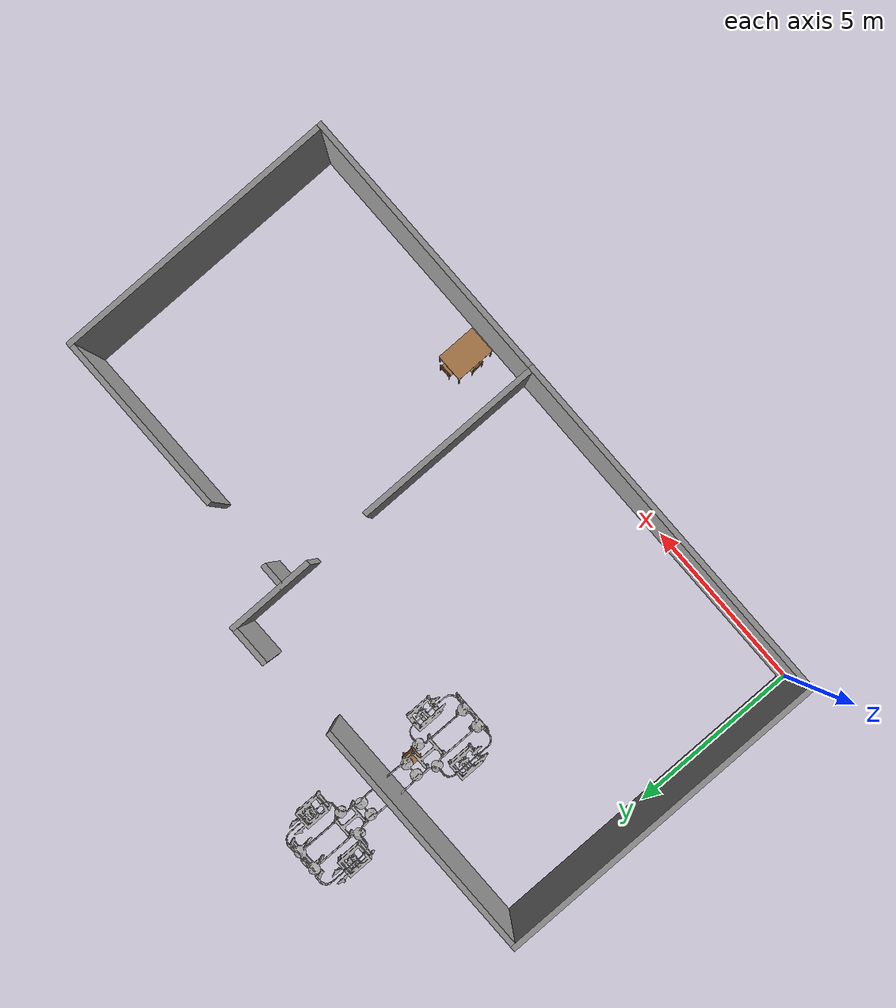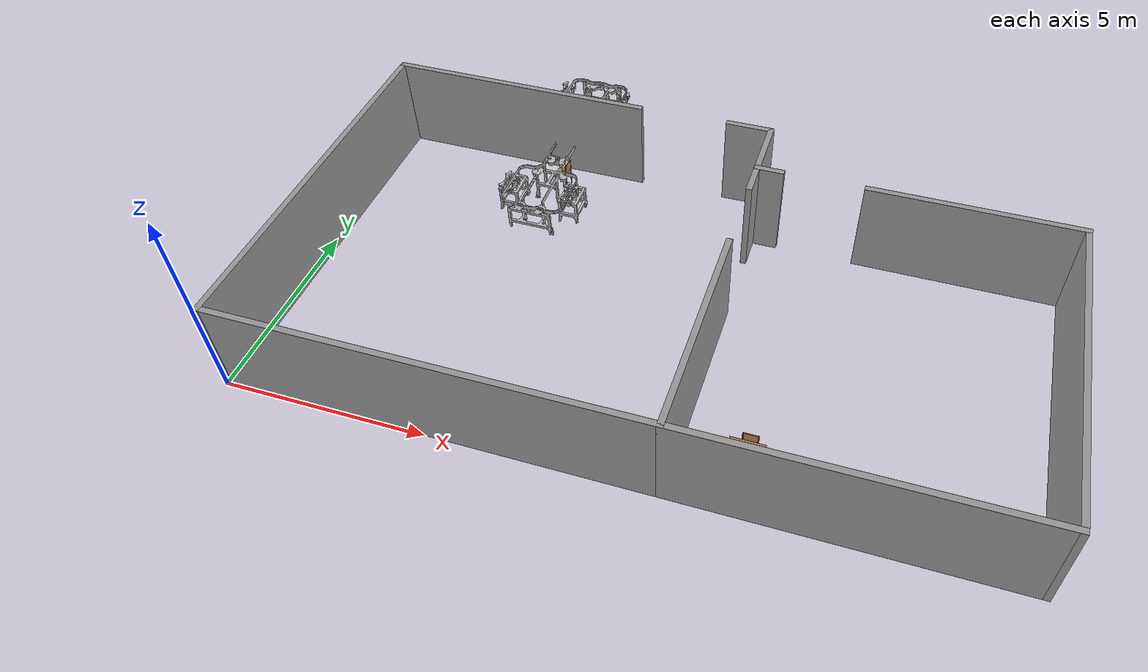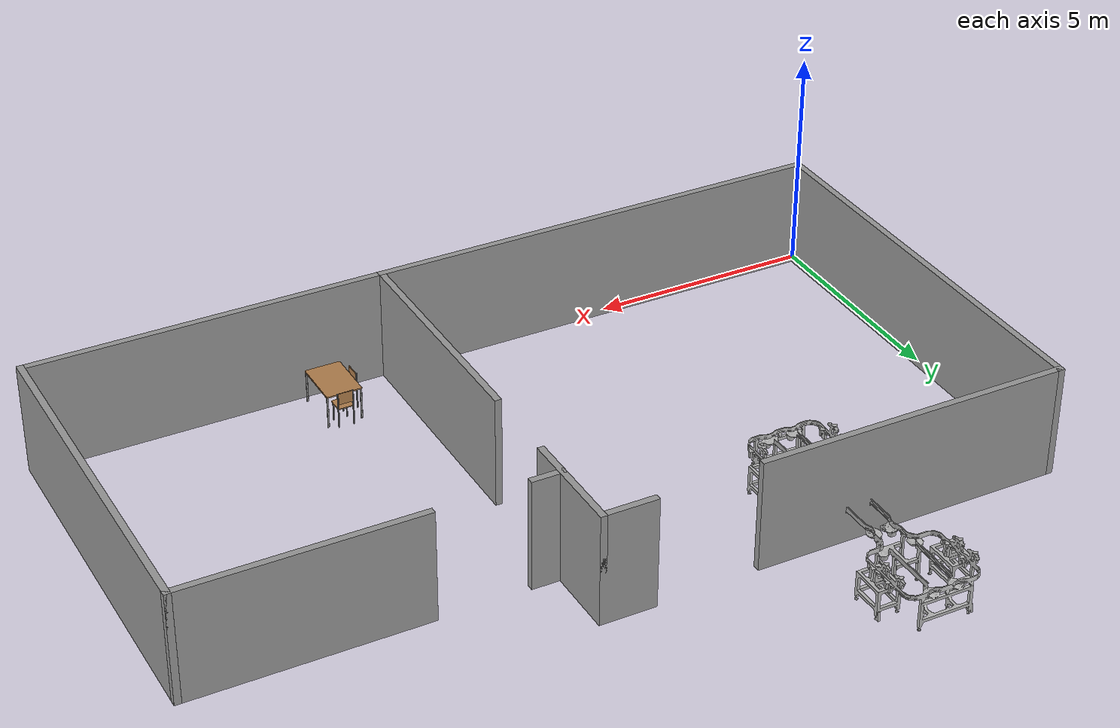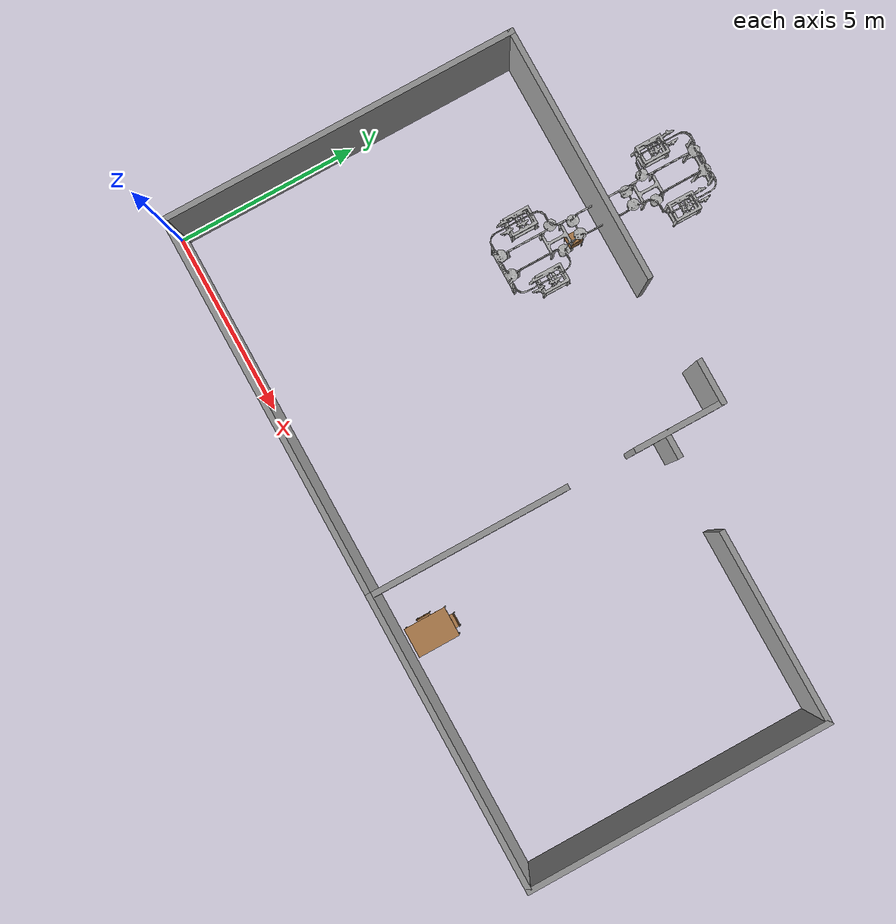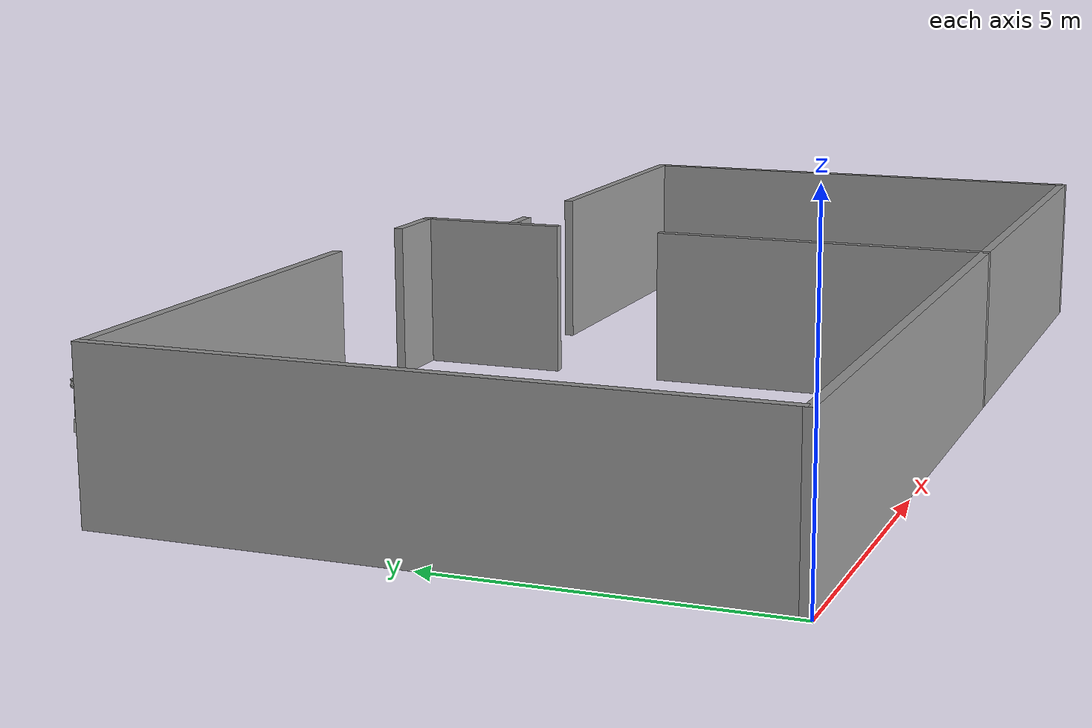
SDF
<sdf version="1.7">
 <world name="default">
  <model name="my_mesh">
   <pose>7.60509 9.58584 0 0 0 -1.5708</pose>
   <static>1</static>
   <link name="body">
    <visual name="visual"><geometry><mesh><uri>model://Cellule_lite.dae</uri></mesh></geometry></visual>
   </link>
  </model>
  <model name="table_mod_clone_clone_1_clone_clone">
   <link name="link">
    <inertial>
     <mass>1</mass>
     <inertia><ixx>1</ixx><ixy>0</ixy><ixz>0</ixz><iyy>1</iyy><iyz>0</iyz><izz>1</izz></inertia>
    </inertial>
    <visual name="visual1">
     <pose>0 0 0.87 0 -0 0</pose>
     <geometry><box><size>1.15 0.8 0.03</size></box></geometry>
     <material>
      <script><uri>file://media/materials/scripts/gazebo.material</uri><name>Gazebo/Wood</name></script>
      <shader type="pixel"><normal_map>__default__</normal_map></shader>
      <ambient>1 1 1 1</ambient>
      <diffuse>1 1 1 1</diffuse>
      <specular>0.2 0.2 0.2 1</specular>
      <emissive>0 0 0 1</emissive>
     </material>
    </visual>
    <visual name="back_right_leg">
     <pose>-0.55 -0.38 0.5 0 -0 0</pose>
     <geometry><cylinder><radius>0.02</radius><length>0.75</length></cylinder></geometry>
     <material>
      <script><uri>file://media/materials/scripts/gazebo.material</uri><name>Gazebo/Grey</name></script>
      <shader type="pixel"><normal_map>__default__</normal_map></shader>
      <ambient>0.3 0.3 0.3 1</ambient>
      <diffuse>0.7 0.7 0.7 1</diffuse>
      <specular>0.01 0.01 0.01 1</specular>
      <emissive>0 0 0 1</emissive>
     </material>
    </visual>
    <visual name="front_right_leg">
     <pose>0.55 -0.38 0.5 0 -0 0</pose>
     <geometry><cylinder><radius>0.02</radius><length>0.75</length></cylinder></geometry>
     <material>
      <script><uri>file://media/materials/scripts/gazebo.material</uri><name>Gazebo/Grey</name></script>
      <shader type="pixel"><normal_map>__default__</normal_map></shader>
      <ambient>0.3 0.3 0.3 1</ambient>
      <diffuse>0.7 0.7 0.7 1</diffuse>
      <specular>0.01 0.01 0.01 1</specular>
      <emissive>0 0 0 1</emissive>
     </material>
    </visual>
    <visual name="back_left_leg">
     <pose>-0.55 0.38 0.5 0 -0 0</pose>
     <geometry><cylinder><radius>0.02</radius><length>0.75</length></cylinder></geometry>
     <material>
      <script><uri>file://media/materials/scripts/gazebo.material</uri><name>Gazebo/Grey</name></script>
      <shader type="pixel"><normal_map>__default__</normal_map></shader>
      <ambient>0.3 0.3 0.3 1</ambient>
      <diffuse>0.7 0.7 0.7 1</diffuse>
      <specular>0.01 0.01 0.01 1</specular>
      <emissive>0 0 0 1</emissive>
     </material>
    </visual>
    <visual name="front_left_leg">
     <pose>0.55 0.38 0.5 0 -0 0</pose>
     <geometry><cylinder><radius>0.02</radius><length>0.75</length></cylinder></geometry>
     <material>
      <script><uri>file://media/materials/scripts/gazebo.material</uri><name>Gazebo/Grey</name></script>
      <shader type="pixel"><normal_map>__default__</normal_map></shader>
      <ambient>0.3 0.3 0.3 1</ambient>
      <diffuse>0.7 0.7 0.7 1</diffuse>
      <specular>0.01 0.01 0.01 1</specular>
      <emissive>0 0 0 1</emissive>
     </material>
    </visual>
    <collision name="surface">
     <pose>0 0 0.87 0 -0 0</pose>
     <geometry><box><size>1.15 0.8 0.03</size></box></geometry>
     <surface>
      <friction>
       <ode><mu>0.6</mu><mu2>0.6</mu2><fdir1>0 0 0</fdir1><slip1>0</slip1><slip2>0</slip2></ode>
       <torsional>
        <coefficient>1</coefficient>
        <patch_radius>0</patch_radius>
        <surface_radius>0</surface_radius>
        <use_patch_radius>1</use_patch_radius>
        <ode><slip>0</slip></ode>
       </torsional>
      </friction>
      <bounce><restitution_coefficient>0</restitution_coefficient><threshold>1e+06</threshold></bounce>
      <contact>
       <collide_without_contact>0</collide_without_contact>
       <collide_without_contact_bitmask>1</collide_without_contact_bitmask>
       <collide_bitmask>1</collide_bitmask>
       <ode>
        <soft_cfm>0</soft_cfm>
        <soft_erp>0.2</soft_erp>
        <kp>1e+13</kp>
        <kd>1</kd>
        <max_vel>0.01</max_vel>
        <min_depth>0</min_depth>
       </ode>
       <bullet>
        <split_impulse>1</split_impulse>
        <split_impulse_penetration_threshold>-0.01</split_impulse_penetration_threshold>
        <soft_cfm>0</soft_cfm>
        <soft_erp>0.2</soft_erp>
        <kp>1e+13</kp>
        <kd>1</kd>
       </bullet>
      </contact>
     </surface>
    </collision>
    <collision name="back_right_leg">
     <pose>-0.55 -0.38 0.5 0 -0 0</pose>
     <geometry><cylinder><radius>0.02</radius><length>0.75</length></cylinder></geometry>
     <surface>
      <friction>
       <ode><mu>1</mu><mu2>1</mu2><fdir1>0 0 0</fdir1><slip1>0</slip1><slip2>0</slip2></ode>
       <torsional>
        <coefficient>1</coefficient>
        <patch_radius>0</patch_radius>
        <surface_radius>0</surface_radius>
        <use_patch_radius>1</use_patch_radius>
        <ode><slip>0</slip></ode>
       </torsional>
      </friction>
      <bounce><restitution_coefficient>0</restitution_coefficient><threshold>1e+06</threshold></bounce>
      <contact>
       <collide_without_contact>0</collide_without_contact>
       <collide_without_contact_bitmask>1</collide_without_contact_bitmask>
       <collide_bitmask>1</collide_bitmask>
       <ode>
        <soft_cfm>0</soft_cfm>
        <soft_erp>0.2</soft_erp>
        <kp>1e+13</kp>
        <kd>1</kd>
        <max_vel>0.01</max_vel>
        <min_depth>0</min_depth>
       </ode>
       <bullet>
        <split_impulse>1</split_impulse>
        <split_impulse_penetration_threshold>-0.01</split_impulse_penetration_threshold>
        <soft_cfm>0</soft_cfm>
        <soft_erp>0.2</soft_erp>
        <kp>1e+13</kp>
        <kd>1</kd>
       </bullet>
      </contact>
     </surface>
    </collision>
    <collision name="back_left_leg">
     <pose>-0.55 0.38 0.5 0 -0 0</pose>
     <geometry><cylinder><radius>0.02</radius><length>0.75</length></cylinder></geometry>
     <surface>
      <friction>
       <ode><mu>1</mu><mu2>1</mu2><fdir1>0 0 0</fdir1><slip1>0</slip1><slip2>0</slip2></ode>
       <torsional>
        <coefficient>1</coefficient>
        <patch_radius>0</patch_radius>
        <surface_radius>0</surface_radius>
        <use_patch_radius>1</use_patch_radius>
        <ode><slip>0</slip></ode>
       </torsional>
      </friction>
      <bounce><restitution_coefficient>0</restitution_coefficient><threshold>1e+06</threshold></bounce>
      <contact>
       <collide_without_contact>0</collide_without_contact>
       <collide_without_contact_bitmask>1</collide_without_contact_bitmask>
       <collide_bitmask>1</collide_bitmask>
       <ode>
        <soft_cfm>0</soft_cfm>
        <soft_erp>0.2</soft_erp>
        <kp>1e+13</kp>
        <kd>1</kd>
        <max_vel>0.01</max_vel>
        <min_depth>0</min_depth>
       </ode>
       <bullet>
        <split_impulse>1</split_impulse>
        <split_impulse_penetration_threshold>-0.01</split_impulse_penetration_threshold>
        <soft_cfm>0</soft_cfm>
        <soft_erp>0.2</soft_erp>
        <kp>1e+13</kp>
        <kd>1</kd>
       </bullet>
      </contact>
     </surface>
    </collision>
    <collision name="front_left_leg">
     <pose>0.55 0.38 0.5 0 -0 0</pose>
     <geometry><cylinder><radius>0.02</radius><length>0.75</length></cylinder></geometry>
     <surface>
      <friction>
       <ode><mu>1</mu><mu2>1</mu2><fdir1>0 0 0</fdir1><slip1>0</slip1><slip2>0</slip2></ode>
       <torsional>
        <coefficient>1</coefficient>
        <patch_radius>0</patch_radius>
        <surface_radius>0</surface_radius>
        <use_patch_radius>1</use_patch_radius>
        <ode><slip>0</slip></ode>
       </torsional>
      </friction>
      <bounce><restitution_coefficient>0</restitution_coefficient><threshold>1e+06</threshold></bounce>
      <contact>
       <collide_without_contact>0</collide_without_contact>
       <collide_without_contact_bitmask>1</collide_without_contact_bitmask>
       <collide_bitmask>1</collide_bitmask>
       <ode>
        <soft_cfm>0</soft_cfm>
        <soft_erp>0.2</soft_erp>
        <kp>1e+13</kp>
        <kd>1</kd>
        <max_vel>0.01</max_vel>
        <min_depth>0</min_depth>
       </ode>
       <bullet>
        <split_impulse>1</split_impulse>
        <split_impulse_penetration_threshold>-0.01</split_impulse_penetration_threshold>
        <soft_cfm>0</soft_cfm>
        <soft_erp>0.2</soft_erp>
        <kp>1e+13</kp>
        <kd>1</kd>
       </bullet>
      </contact>
     </surface>
    </collision>
    <collision name="front_right_leg">
     <pose>0.55 -0.38 0.5 0 -0 0</pose>
     <geometry><cylinder><radius>0.02</radius><length>0.75</length></cylinder></geometry>
     <surface>
      <friction>
       <ode><mu>1</mu><mu2>1</mu2><fdir1>0 0 0</fdir1><slip1>0</slip1><slip2>0</slip2></ode>
       <torsional>
        <coefficient>1</coefficient>
        <patch_radius>0</patch_radius>
        <surface_radius>0</surface_radius>
        <use_patch_radius>1</use_patch_radius>
        <ode><slip>0</slip></ode>
       </torsional>
      </friction>
      <bounce><restitution_coefficient>0</restitution_coefficient><threshold>1e+06</threshold></bounce>
      <contact>
       <collide_without_contact>0</collide_without_contact>
       <collide_without_contact_bitmask>1</collide_without_contact_bitmask>
       <collide_bitmask>1</collide_bitmask>
       <ode>
        <soft_cfm>0</soft_cfm>
        <soft_erp>0.2</soft_erp>
        <kp>1e+13</kp>
        <kd>1</kd>
        <max_vel>0.01</max_vel>
        <min_depth>0</min_depth>
       </ode>
       <bullet>
        <split_impulse>1</split_impulse>
        <split_impulse_penetration_threshold>-0.01</split_impulse_penetration_threshold>
        <soft_cfm>0</soft_cfm>
        <soft_erp>0.2</soft_erp>
        <kp>1e+13</kp>
        <kd>1</kd>
       </bullet>
      </contact>
     </surface>
    </collision>
   </link>
   <static>1</static>
   <pose>11.9408 0.86073 -0.134214 0 0 -1.5708</pose>
  </model>
  <model name="chair_mod_0_clone_2_clone_1_clone_0">
   <link name="link">
    <inertial>
     <mass>1</mass>
     <inertia><ixx>1</ixx><ixy>0</ixy><ixz>0</ixz><iyy>1</iyy><iyz>0</iyz><izz>1</izz></inertia>
    </inertial>
    <visual name="back_right_leg">
     <pose>-0.17 -0.17 0.42 0 -0 0</pose>
     <geometry><cylinder><radius>0.015</radius><length>0.84</length></cylinder></geometry>
     <material>
      <script><uri>file://media/materials/scripts/gazebo.material</uri><name>Gazebo/Grey</name></script>
      <shader type="pixel"><normal_map>__default__</normal_map></shader>
      <ambient>0.3 0.3 0.3 1</ambient>
      <diffuse>0.7 0.7 0.7 1</diffuse>
      <specular>0.01 0.01 0.01 1</specular>
      <emissive>0 0 0 1</emissive>
     </material>
    </visual>
    <visual name="back_left_leg">
     <pose>-0.15 0.15 0.23 0 -0 0</pose>
     <geometry><cylinder><radius>0.015</radius><length>0.46</length></cylinder></geometry>
     <material>
      <script><uri>file://media/materials/scripts/gazebo.material</uri><name>Gazebo/Grey</name></script>
      <shader type="pixel"><normal_map>__default__</normal_map></shader>
      <ambient>0.3 0.3 0.3 1</ambient>
      <diffuse>0.7 0.7 0.7 1</diffuse>
      <specular>0.01 0.01 0.01 1</specular>
      <emissive>0 0 0 1</emissive>
     </material>
    </visual>
    <visual name="visual1">
     <pose>0 0 0.46 0 -0 0</pose>
     <geometry><box><size>0.36 0.36 0.02</size></box></geometry>
     <material>
      <script><uri>file://media/materials/scripts/gazebo.material</uri><name>Gazebo/Wood</name></script>
      <shader type="pixel"><normal_map>__default__</normal_map></shader>
      <ambient>1 1 1 1</ambient>
      <diffuse>1 1 1 1</diffuse>
      <specular>0.2 0.2 0.2 1</specular>
      <emissive>0 0 0 1</emissive>
     </material>
    </visual>
    <visual name="ModelPreview_1::link::visual_5">
     <pose>0 -0.17 0.705 1.56 -0 0</pose>
     <geometry><box><size>0.36 0.26 0.02</size></box></geometry>
     <material>
      <script><uri>file://media/materials/scripts/gazebo.material</uri><name>Gazebo/Wood</name></script>
      <shader type="pixel"><normal_map>__default__</normal_map></shader>
      <ambient>1 1 1 1</ambient>
      <diffuse>1 1 1 1</diffuse>
      <specular>0.2 0.2 0.2 1</specular>
      <emissive>0 0 0 1</emissive>
     </material>
    </visual>
    <visual name="front_left_leg">
     <pose>0.15 0.15 0.23 0 -0 0</pose>
     <geometry><cylinder><radius>0.015</radius><length>0.46</length></cylinder></geometry>
     <material>
      <script><uri>file://media/materials/scripts/gazebo.material</uri><name>Gazebo/Grey</name></script>
      <shader type="pixel"><normal_map>__default__</normal_map></shader>
      <ambient>0.3 0.3 0.3 1</ambient>
      <diffuse>0.7 0.7 0.7 1</diffuse>
      <specular>0.01 0.01 0.01 1</specular>
      <emissive>0 0 0 1</emissive>
     </material>
    </visual>
    <visual name="front_right_leg">
     <pose>0.17 -0.17 0.42 0 -0 0</pose>
     <geometry><cylinder><radius>0.015</radius><length>0.84</length></cylinder></geometry>
     <material>
      <script><uri>file://media/materials/scripts/gazebo.material</uri><name>Gazebo/Grey</name></script>
      <shader type="pixel"><normal_map>__default__</normal_map></shader>
      <ambient>0.3 0.3 0.3 1</ambient>
      <diffuse>0.7 0.7 0.7 1</diffuse>
      <specular>0.01 0.01 0.01 1</specular>
      <emissive>0 0 0 1</emissive>
     </material>
    </visual>
    <collision name="front_right_leg">
     <pose>0.17 -0.17 0.42 0 -0 0</pose>
     <geometry><cylinder><radius>0.015</radius><length>0.84</length></cylinder></geometry>
     <surface>
      <friction>
       <ode><mu>1</mu><mu2>1</mu2><fdir1>0 0 0</fdir1><slip1>0</slip1><slip2>0</slip2></ode>
       <torsional>
        <coefficient>1</coefficient>
        <patch_radius>0</patch_radius>
        <surface_radius>0</surface_radius>
        <use_patch_radius>1</use_patch_radius>
        <ode><slip>0</slip></ode>
       </torsional>
      </friction>
      <bounce><restitution_coefficient>0</restitution_coefficient><threshold>1e+06</threshold></bounce>
      <contact>
       <collide_without_contact>0</collide_without_contact>
       <collide_without_contact_bitmask>1</collide_without_contact_bitmask>
       <collide_bitmask>1</collide_bitmask>
       <ode>
        <soft_cfm>0</soft_cfm>
        <soft_erp>0.2</soft_erp>
        <kp>1e+13</kp>
        <kd>1</kd>
        <max_vel>0.01</max_vel>
        <min_depth>0</min_depth>
       </ode>
       <bullet>
        <split_impulse>1</split_impulse>
        <split_impulse_penetration_threshold>-0.01</split_impulse_penetration_threshold>
        <soft_cfm>0</soft_cfm>
        <soft_erp>0.2</soft_erp>
        <kp>1e+13</kp>
        <kd>1</kd>
       </bullet>
      </contact>
     </surface>
    </collision>
    <collision name="back_right_leg">
     <pose>-0.17 -0.17 0.42 0 -0 0</pose>
     <geometry><cylinder><radius>0.015</radius><length>0.84</length></cylinder></geometry>
     <surface>
      <friction>
       <ode><mu>1</mu><mu2>1</mu2><fdir1>0 0 0</fdir1><slip1>0</slip1><slip2>0</slip2></ode>
       <torsional>
        <coefficient>1</coefficient>
        <patch_radius>0</patch_radius>
        <surface_radius>0</surface_radius>
        <use_patch_radius>1</use_patch_radius>
        <ode><slip>0</slip></ode>
       </torsional>
      </friction>
      <bounce><restitution_coefficient>0</restitution_coefficient><threshold>1e+06</threshold></bounce>
      <contact>
       <collide_without_contact>0</collide_without_contact>
       <collide_without_contact_bitmask>1</collide_without_contact_bitmask>
       <collide_bitmask>1</collide_bitmask>
       <ode>
        <soft_cfm>0</soft_cfm>
        <soft_erp>0.2</soft_erp>
        <kp>1e+13</kp>
        <kd>1</kd>
        <max_vel>0.01</max_vel>
        <min_depth>0</min_depth>
       </ode>
       <bullet>
        <split_impulse>1</split_impulse>
        <split_impulse_penetration_threshold>-0.01</split_impulse_penetration_threshold>
        <soft_cfm>0</soft_cfm>
        <soft_erp>0.2</soft_erp>
        <kp>1e+13</kp>
        <kd>1</kd>
       </bullet>
      </contact>
     </surface>
    </collision>
    <collision name="back_left_leg">
     <pose>-0.15 0.15 0.23 0 -0 0</pose>
     <geometry><cylinder><radius>0.015</radius><length>0.46</length></cylinder></geometry>
     <surface>
      <friction>
       <ode><mu>1</mu><mu2>1</mu2><fdir1>0 0 0</fdir1><slip1>0</slip1><slip2>0</slip2></ode>
       <torsional>
        <coefficient>1</coefficient>
        <patch_radius>0</patch_radius>
        <surface_radius>0</surface_radius>
        <use_patch_radius>1</use_patch_radius>
        <ode><slip>0</slip></ode>
       </torsional>
      </friction>
      <bounce><restitution_coefficient>0</restitution_coefficient><threshold>1e+06</threshold></bounce>
      <contact>
       <collide_without_contact>0</collide_without_contact>
       <collide_without_contact_bitmask>1</collide_without_contact_bitmask>
       <collide_bitmask>1</collide_bitmask>
       <ode>
        <soft_cfm>0</soft_cfm>
        <soft_erp>0.2</soft_erp>
        <kp>1e+13</kp>
        <kd>1</kd>
        <max_vel>0.01</max_vel>
        <min_depth>0</min_depth>
       </ode>
       <bullet>
        <split_impulse>1</split_impulse>
        <split_impulse_penetration_threshold>-0.01</split_impulse_penetration_threshold>
        <soft_cfm>0</soft_cfm>
        <soft_erp>0.2</soft_erp>
        <kp>1e+13</kp>
        <kd>1</kd>
       </bullet>
      </contact>
     </surface>
    </collision>
    <collision name="collision_6">
     <pose>0 -0.17 0.705 1.56 -0 0</pose>
     <geometry><box><size>0.36 0.26 0.03</size></box></geometry>
     <surface>
      <friction>
       <ode><mu>1</mu><mu2>1</mu2><fdir1>0 0 0</fdir1><slip1>0</slip1><slip2>0</slip2></ode>
       <torsional>
        <coefficient>1</coefficient>
        <patch_radius>0</patch_radius>
        <surface_radius>0</surface_radius>
        <use_patch_radius>1</use_patch_radius>
        <ode><slip>0</slip></ode>
       </torsional>
      </friction>
      <bounce><restitution_coefficient>0</restitution_coefficient><threshold>1e+06</threshold></bounce>
      <contact>
       <collide_without_contact>0</collide_without_contact>
       <collide_without_contact_bitmask>1</collide_without_contact_bitmask>
       <collide_bitmask>1</collide_bitmask>
       <ode>
        <soft_cfm>0</soft_cfm>
        <soft_erp>0.2</soft_erp>
        <kp>1e+13</kp>
        <kd>1</kd>
        <max_vel>0.01</max_vel>
        <min_depth>0</min_depth>
       </ode>
       <bullet>
        <split_impulse>1</split_impulse>
        <split_impulse_penetration_threshold>-0.01</split_impulse_penetration_threshold>
        <soft_cfm>0</soft_cfm>
        <soft_erp>0.2</soft_erp>
        <kp>1e+13</kp>
        <kd>1</kd>
       </bullet>
      </contact>
     </surface>
    </collision>
    <collision name="surface">
     <pose>0 0 0.46 0 -0 0</pose>
     <geometry><box><size>0.36 0.36 0.03</size></box></geometry>
     <surface>
      <friction>
       <ode><mu>0.6</mu><mu2>0.6</mu2><fdir1>0 0 0</fdir1><slip1>0</slip1><slip2>0</slip2></ode>
       <torsional>
        <coefficient>1</coefficient>
        <patch_radius>0</patch_radius>
        <surface_radius>0</surface_radius>
        <use_patch_radius>1</use_patch_radius>
        <ode><slip>0</slip></ode>
       </torsional>
      </friction>
      <bounce><restitution_coefficient>0</restitution_coefficient><threshold>1e+06</threshold></bounce>
      <contact>
       <collide_without_contact>0</collide_without_contact>
       <collide_without_contact_bitmask>1</collide_without_contact_bitmask>
       <collide_bitmask>1</collide_bitmask>
       <ode>
        <soft_cfm>0</soft_cfm>
        <soft_erp>0.2</soft_erp>
        <kp>1e+13</kp>
        <kd>1</kd>
        <max_vel>0.01</max_vel>
        <min_depth>0</min_depth>
       </ode>
       <bullet>
        <split_impulse>1</split_impulse>
        <split_impulse_penetration_threshold>-0.01</split_impulse_penetration_threshold>
        <soft_cfm>0</soft_cfm>
        <soft_erp>0.2</soft_erp>
        <kp>1e+13</kp>
        <kd>1</kd>
       </bullet>
      </contact>
     </surface>
    </collision>
    <collision name="front_left_leg">
     <pose>0.15 0.15 0.23 0 -0 0</pose>
     <geometry><cylinder><radius>0.015</radius><length>0.46</length></cylinder></geometry>
     <surface>
      <friction>
       <ode><mu>1</mu><mu2>1</mu2><fdir1>0 0 0</fdir1><slip1>0</slip1><slip2>0</slip2></ode>
       <torsional>
        <coefficient>1</coefficient>
        <patch_radius>0</patch_radius>
        <surface_radius>0</surface_radius>
        <use_patch_radius>1</use_patch_radius>
        <ode><slip>0</slip></ode>
       </torsional>
      </friction>
      <bounce><restitution_coefficient>0</restitution_coefficient><threshold>1e+06</threshold></bounce>
      <contact>
       <collide_without_contact>0</collide_without_contact>
       <collide_without_contact_bitmask>1</collide_without_contact_bitmask>
       <collide_bitmask>1</collide_bitmask>
       <ode>
        <soft_cfm>0</soft_cfm>
        <soft_erp>0.2</soft_erp>
        <kp>1e+13</kp>
        <kd>1</kd>
        <max_vel>0.01</max_vel>
        <min_depth>0</min_depth>
       </ode>
       <bullet>
        <split_impulse>1</split_impulse>
        <split_impulse_penetration_threshold>-0.01</split_impulse_penetration_threshold>
        <soft_cfm>0</soft_cfm>
        <soft_erp>0.2</soft_erp>
        <kp>1e+13</kp>
        <kd>1</kd>
       </bullet>
      </contact>
     </surface>
    </collision>
   </link>
   <static>1</static>
   <pose>11.9699 1.37634 0 0 0 -3.14159</pose>
  </model>
  <model name="chair_mod_0_clone_2_clone_1_clone_3_clone">
   <link name="link">
    <inertial>
     <mass>1</mass>
     <inertia><ixx>1</ixx><ixy>0</ixy><ixz>0</ixz><iyy>1</iyy><iyz>0</iyz><izz>1</izz></inertia>
    </inertial>
    <visual name="back_right_leg">
     <pose>-0.17 -0.17 0.42 0 -0 0</pose>
     <geometry><cylinder><radius>0.015</radius><length>0.84</length></cylinder></geometry>
     <material>
      <script><uri>file://media/materials/scripts/gazebo.material</uri><name>Gazebo/Grey</name></script>
      <shader type="pixel"><normal_map>__default__</normal_map></shader>
      <ambient>0.3 0.3 0.3 1</ambient>
      <diffuse>0.7 0.7 0.7 1</diffuse>
      <specular>0.01 0.01 0.01 1</specular>
      <emissive>0 0 0 1</emissive>
     </material>
    </visual>
    <visual name="back_left_leg">
     <pose>-0.15 0.15 0.23 0 -0 0</pose>
     <geometry><cylinder><radius>0.015</radius><length>0.46</length></cylinder></geometry>
     <material>
      <script><uri>file://media/materials/scripts/gazebo.material</uri><name>Gazebo/Grey</name></script>
      <shader type="pixel"><normal_map>__default__</normal_map></shader>
      <ambient>0.3 0.3 0.3 1</ambient>
      <diffuse>0.7 0.7 0.7 1</diffuse>
      <specular>0.01 0.01 0.01 1</specular>
      <emissive>0 0 0 1</emissive>
     </material>
    </visual>
    <visual name="visual1">
     <pose>0 0 0.46 0 -0 0</pose>
     <geometry><box><size>0.36 0.36 0.02</size></box></geometry>
     <material>
      <script><uri>file://media/materials/scripts/gazebo.material</uri><name>Gazebo/Wood</name></script>
      <shader type="pixel"><normal_map>__default__</normal_map></shader>
      <ambient>1 1 1 1</ambient>
      <diffuse>1 1 1 1</diffuse>
      <specular>0.2 0.2 0.2 1</specular>
      <emissive>0 0 0 1</emissive>
     </material>
    </visual>
    <visual name="ModelPreview_1::link::visual_5">
     <pose>0 -0.17 0.705 1.56 -0 0</pose>
     <geometry><box><size>0.36 0.26 0.02</size></box></geometry>
     <material>
      <script><uri>file://media/materials/scripts/gazebo.material</uri><name>Gazebo/Wood</name></script>
      <shader type="pixel"><normal_map>__default__</normal_map></shader>
      <ambient>1 1 1 1</ambient>
      <diffuse>1 1 1 1</diffuse>
      <specular>0.2 0.2 0.2 1</specular>
      <emissive>0 0 0 1</emissive>
     </material>
    </visual>
    <visual name="front_left_leg">
     <pose>0.15 0.15 0.23 0 -0 0</pose>
     <geometry><cylinder><radius>0.015</radius><length>0.46</length></cylinder></geometry>
     <material>
      <script><uri>file://media/materials/scripts/gazebo.material</uri><name>Gazebo/Grey</name></script>
      <shader type="pixel"><normal_map>__default__</normal_map></shader>
      <ambient>0.3 0.3 0.3 1</ambient>
      <diffuse>0.7 0.7 0.7 1</diffuse>
      <specular>0.01 0.01 0.01 1</specular>
      <emissive>0 0 0 1</emissive>
     </material>
    </visual>
    <visual name="front_right_leg">
     <pose>0.17 -0.17 0.42 0 -0 0</pose>
     <geometry><cylinder><radius>0.015</radius><length>0.84</length></cylinder></geometry>
     <material>
      <script><uri>file://media/materials/scripts/gazebo.material</uri><name>Gazebo/Grey</name></script>
      <shader type="pixel"><normal_map>__default__</normal_map></shader>
      <ambient>0.3 0.3 0.3 1</ambient>
      <diffuse>0.7 0.7 0.7 1</diffuse>
      <specular>0.01 0.01 0.01 1</specular>
      <emissive>0 0 0 1</emissive>
     </material>
    </visual>
    <collision name="front_right_leg">
     <pose>0.17 -0.17 0.42 0 -0 0</pose>
     <geometry><cylinder><radius>0.015</radius><length>0.84</length></cylinder></geometry>
     <surface>
      <friction>
       <ode><mu>1</mu><mu2>1</mu2><fdir1>0 0 0</fdir1><slip1>0</slip1><slip2>0</slip2></ode>
       <torsional>
        <coefficient>1</coefficient>
        <patch_radius>0</patch_radius>
        <surface_radius>0</surface_radius>
        <use_patch_radius>1</use_patch_radius>
        <ode><slip>0</slip></ode>
       </torsional>
      </friction>
      <bounce><restitution_coefficient>0</restitution_coefficient><threshold>1e+06</threshold></bounce>
      <contact>
       <collide_without_contact>0</collide_without_contact>
       <collide_without_contact_bitmask>1</collide_without_contact_bitmask>
       <collide_bitmask>1</collide_bitmask>
       <ode>
        <soft_cfm>0</soft_cfm>
        <soft_erp>0.2</soft_erp>
        <kp>1e+13</kp>
        <kd>1</kd>
        <max_vel>0.01</max_vel>
        <min_depth>0</min_depth>
       </ode>
       <bullet>
        <split_impulse>1</split_impulse>
        <split_impulse_penetration_threshold>-0.01</split_impulse_penetration_threshold>
        <soft_cfm>0</soft_cfm>
        <soft_erp>0.2</soft_erp>
        <kp>1e+13</kp>
        <kd>1</kd>
       </bullet>
      </contact>
     </surface>
    </collision>
    <collision name="back_right_leg">
     <pose>-0.17 -0.17 0.42 0 -0 0</pose>
     <geometry><cylinder><radius>0.015</radius><length>0.84</length></cylinder></geometry>
     <surface>
      <friction>
       <ode><mu>1</mu><mu2>1</mu2><fdir1>0 0 0</fdir1><slip1>0</slip1><slip2>0</slip2></ode>
       <torsional>
        <coefficient>1</coefficient>
        <patch_radius>0</patch_radius>
        <surface_radius>0</surface_radius>
        <use_patch_radius>1</use_patch_radius>
        <ode><slip>0</slip></ode>
       </torsional>
      </friction>
      <bounce><restitution_coefficient>0</restitution_coefficient><threshold>1e+06</threshold></bounce>
      <contact>
       <collide_without_contact>0</collide_without_contact>
       <collide_without_contact_bitmask>1</collide_without_contact_bitmask>
       <collide_bitmask>1</collide_bitmask>
       <ode>
        <soft_cfm>0</soft_cfm>
        <soft_erp>0.2</soft_erp>
        <kp>1e+13</kp>
        <kd>1</kd>
        <max_vel>0.01</max_vel>
        <min_depth>0</min_depth>
       </ode>
       <bullet>
        <split_impulse>1</split_impulse>
        <split_impulse_penetration_threshold>-0.01</split_impulse_penetration_threshold>
        <soft_cfm>0</soft_cfm>
        <soft_erp>0.2</soft_erp>
        <kp>1e+13</kp>
        <kd>1</kd>
       </bullet>
      </contact>
     </surface>
    </collision>
    <collision name="back_left_leg">
     <pose>-0.15 0.15 0.23 0 -0 0</pose>
     <geometry><cylinder><radius>0.015</radius><length>0.46</length></cylinder></geometry>
     <surface>
      <friction>
       <ode><mu>1</mu><mu2>1</mu2><fdir1>0 0 0</fdir1><slip1>0</slip1><slip2>0</slip2></ode>
       <torsional>
        <coefficient>1</coefficient>
        <patch_radius>0</patch_radius>
        <surface_radius>0</surface_radius>
        <use_patch_radius>1</use_patch_radius>
        <ode><slip>0</slip></ode>
       </torsional>
      </friction>
      <bounce><restitution_coefficient>0</restitution_coefficient><threshold>1e+06</threshold></bounce>
      <contact>
       <collide_without_contact>0</collide_without_contact>
       <collide_without_contact_bitmask>1</collide_without_contact_bitmask>
       <collide_bitmask>1</collide_bitmask>
       <ode>
        <soft_cfm>0</soft_cfm>
        <soft_erp>0.2</soft_erp>
        <kp>1e+13</kp>
        <kd>1</kd>
        <max_vel>0.01</max_vel>
        <min_depth>0</min_depth>
       </ode>
       <bullet>
        <split_impulse>1</split_impulse>
        <split_impulse_penetration_threshold>-0.01</split_impulse_penetration_threshold>
        <soft_cfm>0</soft_cfm>
        <soft_erp>0.2</soft_erp>
        <kp>1e+13</kp>
        <kd>1</kd>
       </bullet>
      </contact>
     </surface>
    </collision>
    <collision name="collision_6">
     <pose>0 -0.17 0.705 1.56 -0 0</pose>
     <geometry><box><size>0.36 0.26 0.03</size></box></geometry>
     <surface>
      <friction>
       <ode><mu>1</mu><mu2>1</mu2><fdir1>0 0 0</fdir1><slip1>0</slip1><slip2>0</slip2></ode>
       <torsional>
        <coefficient>1</coefficient>
        <patch_radius>0</patch_radius>
        <surface_radius>0</surface_radius>
        <use_patch_radius>1</use_patch_radius>
        <ode><slip>0</slip></ode>
       </torsional>
      </friction>
      <bounce><restitution_coefficient>0</restitution_coefficient><threshold>1e+06</threshold></bounce>
      <contact>
       <collide_without_contact>0</collide_without_contact>
       <collide_without_contact_bitmask>1</collide_without_contact_bitmask>
       <collide_bitmask>1</collide_bitmask>
       <ode>
        <soft_cfm>0</soft_cfm>
        <soft_erp>0.2</soft_erp>
        <kp>1e+13</kp>
        <kd>1</kd>
        <max_vel>0.01</max_vel>
        <min_depth>0</min_depth>
       </ode>
       <bullet>
        <split_impulse>1</split_impulse>
        <split_impulse_penetration_threshold>-0.01</split_impulse_penetration_threshold>
        <soft_cfm>0</soft_cfm>
        <soft_erp>0.2</soft_erp>
        <kp>1e+13</kp>
        <kd>1</kd>
       </bullet>
      </contact>
     </surface>
    </collision>
    <collision name="surface">
     <pose>0 0 0.46 0 -0 0</pose>
     <geometry><box><size>0.36 0.36 0.03</size></box></geometry>
     <surface>
      <friction>
       <ode><mu>0.6</mu><mu2>0.6</mu2><fdir1>0 0 0</fdir1><slip1>0</slip1><slip2>0</slip2></ode>
       <torsional>
        <coefficient>1</coefficient>
        <patch_radius>0</patch_radius>
        <surface_radius>0</surface_radius>
        <use_patch_radius>1</use_patch_radius>
        <ode><slip>0</slip></ode>
       </torsional>
      </friction>
      <bounce><restitution_coefficient>0</restitution_coefficient><threshold>1e+06</threshold></bounce>
      <contact>
       <collide_without_contact>0</collide_without_contact>
       <collide_without_contact_bitmask>1</collide_without_contact_bitmask>
       <collide_bitmask>1</collide_bitmask>
       <ode>
        <soft_cfm>0</soft_cfm>
        <soft_erp>0.2</soft_erp>
        <kp>1e+13</kp>
        <kd>1</kd>
        <max_vel>0.01</max_vel>
        <min_depth>0</min_depth>
       </ode>
       <bullet>
        <split_impulse>1</split_impulse>
        <split_impulse_penetration_threshold>-0.01</split_impulse_penetration_threshold>
        <soft_cfm>0</soft_cfm>
        <soft_erp>0.2</soft_erp>
        <kp>1e+13</kp>
        <kd>1</kd>
       </bullet>
      </contact>
     </surface>
    </collision>
    <collision name="front_left_leg">
     <pose>0.15 0.15 0.23 0 -0 0</pose>
     <geometry><cylinder><radius>0.015</radius><length>0.46</length></cylinder></geometry>
     <surface>
      <friction>
       <ode><mu>1</mu><mu2>1</mu2><fdir1>0 0 0</fdir1><slip1>0</slip1><slip2>0</slip2></ode>
       <torsional>
        <coefficient>1</coefficient>
        <patch_radius>0</patch_radius>
        <surface_radius>0</surface_radius>
        <use_patch_radius>1</use_patch_radius>
        <ode><slip>0</slip></ode>
       </torsional>
      </friction>
      <bounce><restitution_coefficient>0</restitution_coefficient><threshold>1e+06</threshold></bounce>
      <contact>
       <collide_without_contact>0</collide_without_contact>
       <collide_without_contact_bitmask>1</collide_without_contact_bitmask>
       <collide_bitmask>1</collide_bitmask>
       <ode>
        <soft_cfm>0</soft_cfm>
        <soft_erp>0.2</soft_erp>
        <kp>1e+13</kp>
        <kd>1</kd>
        <max_vel>0.01</max_vel>
        <min_depth>0</min_depth>
       </ode>
       <bullet>
        <split_impulse>1</split_impulse>
        <split_impulse_penetration_threshold>-0.01</split_impulse_penetration_threshold>
        <soft_cfm>0</soft_cfm>
        <soft_erp>0.2</soft_erp>
        <kp>1e+13</kp>
        <kd>1</kd>
       </bullet>
      </contact>
     </surface>
    </collision>
   </link>
   <static>1</static>
   <pose>11.6571 0.848032 0 0 0 -1.54159</pose>
  </model>
  <model name="chair_mod_0_clone_12">
   <link name="link">
    <inertial>
     <mass>1</mass>
     <inertia><ixx>1</ixx><ixy>0</ixy><ixz>0</ixz><iyy>1</iyy><iyz>0</iyz><izz>1</izz></inertia>
    </inertial>
    <visual name="back_right_leg">
     <pose>-0.17 -0.17 0.42 0 -0 0</pose>
     <geometry><cylinder><radius>0.015</radius><length>0.84</length></cylinder></geometry>
     <material>
      <script><uri>file://media/materials/scripts/gazebo.material</uri><name>Gazebo/Grey</name></script>
      <shader type="pixel"><normal_map>__default__</normal_map></shader>
      <ambient>0.3 0.3 0.3 1</ambient>
      <diffuse>0.7 0.7 0.7 1</diffuse>
      <specular>0.01 0.01 0.01 1</specular>
      <emissive>0 0 0 1</emissive>
     </material>
    </visual>
    <visual name="back_left_leg">
     <pose>-0.15 0.15 0.23 0 -0 0</pose>
     <geometry><cylinder><radius>0.015</radius><length>0.46</length></cylinder></geometry>
     <material>
      <script><uri>file://media/materials/scripts/gazebo.material</uri><name>Gazebo/Grey</name></script>
      <shader type="pixel"><normal_map>__default__</normal_map></shader>
      <ambient>0.3 0.3 0.3 1</ambient>
      <diffuse>0.7 0.7 0.7 1</diffuse>
      <specular>0.01 0.01 0.01 1</specular>
      <emissive>0 0 0 1</emissive>
     </material>
    </visual>
    <visual name="visual1">
     <pose>0 0 0.46 0 -0 0</pose>
     <geometry><box><size>0.36 0.36 0.02</size></box></geometry>
     <material>
      <script><uri>file://media/materials/scripts/gazebo.material</uri><name>Gazebo/Wood</name></script>
      <shader type="pixel"><normal_map>__default__</normal_map></shader>
      <ambient>1 1 1 1</ambient>
      <diffuse>1 1 1 1</diffuse>
      <specular>0.2 0.2 0.2 1</specular>
      <emissive>0 0 0 1</emissive>
     </material>
    </visual>
    <visual name="ModelPreview_1::link::visual_5">
     <pose>0 -0.17 0.705 1.56 -0 0</pose>
     <geometry><box><size>0.36 0.26 0.02</size></box></geometry>
     <material>
      <script><uri>file://media/materials/scripts/gazebo.material</uri><name>Gazebo/Wood</name></script>
      <shader type="pixel"><normal_map>__default__</normal_map></shader>
      <ambient>1 1 1 1</ambient>
      <diffuse>1 1 1 1</diffuse>
      <specular>0.2 0.2 0.2 1</specular>
      <emissive>0 0 0 1</emissive>
     </material>
    </visual>
    <visual name="front_left_leg">
     <pose>0.15 0.15 0.23 0 -0 0</pose>
     <geometry><cylinder><radius>0.015</radius><length>0.46</length></cylinder></geometry>
     <material>
      <script><uri>file://media/materials/scripts/gazebo.material</uri><name>Gazebo/Grey</name></script>
      <shader type="pixel"><normal_map>__default__</normal_map></shader>
      <ambient>0.3 0.3 0.3 1</ambient>
      <diffuse>0.7 0.7 0.7 1</diffuse>
      <specular>0.01 0.01 0.01 1</specular>
      <emissive>0 0 0 1</emissive>
     </material>
    </visual>
    <visual name="front_right_leg">
     <pose>0.17 -0.17 0.42 0 -0 0</pose>
     <geometry><cylinder><radius>0.015</radius><length>0.84</length></cylinder></geometry>
     <material>
      <script><uri>file://media/materials/scripts/gazebo.material</uri><name>Gazebo/Grey</name></script>
      <shader type="pixel"><normal_map>__default__</normal_map></shader>
      <ambient>0.3 0.3 0.3 1</ambient>
      <diffuse>0.7 0.7 0.7 1</diffuse>
      <specular>0.01 0.01 0.01 1</specular>
      <emissive>0 0 0 1</emissive>
     </material>
    </visual>
    <collision name="front_right_leg">
     <pose>0.17 -0.17 0.42 0 -0 0</pose>
     <geometry><cylinder><radius>0.015</radius><length>0.84</length></cylinder></geometry>
     <surface>
      <friction>
       <ode><mu>1</mu><mu2>1</mu2><fdir1>0 0 0</fdir1><slip1>0</slip1><slip2>0</slip2></ode>
       <torsional>
        <coefficient>1</coefficient>
        <patch_radius>0</patch_radius>
        <surface_radius>0</surface_radius>
        <use_patch_radius>1</use_patch_radius>
        <ode><slip>0</slip></ode>
       </torsional>
      </friction>
      <bounce><restitution_coefficient>0</restitution_coefficient><threshold>1e+06</threshold></bounce>
      <contact>
       <collide_without_contact>0</collide_without_contact>
       <collide_without_contact_bitmask>1</collide_without_contact_bitmask>
       <collide_bitmask>1</collide_bitmask>
       <ode>
        <soft_cfm>0</soft_cfm>
        <soft_erp>0.2</soft_erp>
        <kp>1e+13</kp>
        <kd>1</kd>
        <max_vel>0.01</max_vel>
        <min_depth>0</min_depth>
       </ode>
       <bullet>
        <split_impulse>1</split_impulse>
        <split_impulse_penetration_threshold>-0.01</split_impulse_penetration_threshold>
        <soft_cfm>0</soft_cfm>
        <soft_erp>0.2</soft_erp>
        <kp>1e+13</kp>
        <kd>1</kd>
       </bullet>
      </contact>
     </surface>
    </collision>
    <collision name="back_right_leg">
     <pose>-0.17 -0.17 0.42 0 -0 0</pose>
     <geometry><cylinder><radius>0.015</radius><length>0.84</length></cylinder></geometry>
     <surface>
      <friction>
       <ode><mu>1</mu><mu2>1</mu2><fdir1>0 0 0</fdir1><slip1>0</slip1><slip2>0</slip2></ode>
       <torsional>
        <coefficient>1</coefficient>
        <patch_radius>0</patch_radius>
        <surface_radius>0</surface_radius>
        <use_patch_radius>1</use_patch_radius>
        <ode><slip>0</slip></ode>
       </torsional>
      </friction>
      <bounce><restitution_coefficient>0</restitution_coefficient><threshold>1e+06</threshold></bounce>
      <contact>
       <collide_without_contact>0</collide_without_contact>
       <collide_without_contact_bitmask>1</collide_without_contact_bitmask>
       <collide_bitmask>1</collide_bitmask>
       <ode>
        <soft_cfm>0</soft_cfm>
        <soft_erp>0.2</soft_erp>
        <kp>1e+13</kp>
        <kd>1</kd>
        <max_vel>0.01</max_vel>
        <min_depth>0</min_depth>
       </ode>
       <bullet>
        <split_impulse>1</split_impulse>
        <split_impulse_penetration_threshold>-0.01</split_impulse_penetration_threshold>
        <soft_cfm>0</soft_cfm>
        <soft_erp>0.2</soft_erp>
        <kp>1e+13</kp>
        <kd>1</kd>
       </bullet>
      </contact>
     </surface>
    </collision>
    <collision name="back_left_leg">
     <pose>-0.15 0.15 0.23 0 -0 0</pose>
     <geometry><cylinder><radius>0.015</radius><length>0.46</length></cylinder></geometry>
     <surface>
      <friction>
       <ode><mu>1</mu><mu2>1</mu2><fdir1>0 0 0</fdir1><slip1>0</slip1><slip2>0</slip2></ode>
       <torsional>
        <coefficient>1</coefficient>
        <patch_radius>0</patch_radius>
        <surface_radius>0</surface_radius>
        <use_patch_radius>1</use_patch_radius>
        <ode><slip>0</slip></ode>
       </torsional>
      </friction>
      <bounce><restitution_coefficient>0</restitution_coefficient><threshold>1e+06</threshold></bounce>
      <contact>
       <collide_without_contact>0</collide_without_contact>
       <collide_without_contact_bitmask>1</collide_without_contact_bitmask>
       <collide_bitmask>1</collide_bitmask>
       <ode>
        <soft_cfm>0</soft_cfm>
        <soft_erp>0.2</soft_erp>
        <kp>1e+13</kp>
        <kd>1</kd>
        <max_vel>0.01</max_vel>
        <min_depth>0</min_depth>
       </ode>
       <bullet>
        <split_impulse>1</split_impulse>
        <split_impulse_penetration_threshold>-0.01</split_impulse_penetration_threshold>
        <soft_cfm>0</soft_cfm>
        <soft_erp>0.2</soft_erp>
        <kp>1e+13</kp>
        <kd>1</kd>
       </bullet>
      </contact>
     </surface>
    </collision>
    <collision name="collision_6">
     <pose>0 -0.17 0.705 1.56 -0 0</pose>
     <geometry><box><size>0.36 0.26 0.03</size></box></geometry>
     <surface>
      <friction>
       <ode><mu>1</mu><mu2>1</mu2><fdir1>0 0 0</fdir1><slip1>0</slip1><slip2>0</slip2></ode>
       <torsional>
        <coefficient>1</coefficient>
        <patch_radius>0</patch_radius>
        <surface_radius>0</surface_radius>
        <use_patch_radius>1</use_patch_radius>
        <ode><slip>0</slip></ode>
       </torsional>
      </friction>
      <bounce><restitution_coefficient>0</restitution_coefficient><threshold>1e+06</threshold></bounce>
      <contact>
       <collide_without_contact>0</collide_without_contact>
       <collide_without_contact_bitmask>1</collide_without_contact_bitmask>
       <collide_bitmask>1</collide_bitmask>
       <ode>
        <soft_cfm>0</soft_cfm>
        <soft_erp>0.2</soft_erp>
        <kp>1e+13</kp>
        <kd>1</kd>
        <max_vel>0.01</max_vel>
        <min_depth>0</min_depth>
       </ode>
       <bullet>
        <split_impulse>1</split_impulse>
        <split_impulse_penetration_threshold>-0.01</split_impulse_penetration_threshold>
        <soft_cfm>0</soft_cfm>
        <soft_erp>0.2</soft_erp>
        <kp>1e+13</kp>
        <kd>1</kd>
       </bullet>
      </contact>
     </surface>
    </collision>
    <collision name="surface">
     <pose>0 0 0.46 0 -0 0</pose>
     <geometry><box><size>0.36 0.36 0.03</size></box></geometry>
     <surface>
      <friction>
       <ode><mu>0.6</mu><mu2>0.6</mu2><fdir1>0 0 0</fdir1><slip1>0</slip1><slip2>0</slip2></ode>
       <torsional>
        <coefficient>1</coefficient>
        <patch_radius>0</patch_radius>
        <surface_radius>0</surface_radius>
        <use_patch_radius>1</use_patch_radius>
        <ode><slip>0</slip></ode>
       </torsional>
      </friction>
      <bounce><restitution_coefficient>0</restitution_coefficient><threshold>1e+06</threshold></bounce>
      <contact>
       <collide_without_contact>0</collide_without_contact>
       <collide_without_contact_bitmask>1</collide_without_contact_bitmask>
       <collide_bitmask>1</collide_bitmask>
       <ode>
        <soft_cfm>0</soft_cfm>
        <soft_erp>0.2</soft_erp>
        <kp>1e+13</kp>
        <kd>1</kd>
        <max_vel>0.01</max_vel>
        <min_depth>0</min_depth>
       </ode>
       <bullet>
        <split_impulse>1</split_impulse>
        <split_impulse_penetration_threshold>-0.01</split_impulse_penetration_threshold>
        <soft_cfm>0</soft_cfm>
        <soft_erp>0.2</soft_erp>
        <kp>1e+13</kp>
        <kd>1</kd>
       </bullet>
      </contact>
     </surface>
    </collision>
    <collision name="front_left_leg">
     <pose>0.15 0.15 0.23 0 -0 0</pose>
     <geometry><cylinder><radius>0.015</radius><length>0.46</length></cylinder></geometry>
     <surface>
      <friction>
       <ode><mu>1</mu><mu2>1</mu2><fdir1>0 0 0</fdir1><slip1>0</slip1><slip2>0</slip2></ode>
       <torsional>
        <coefficient>1</coefficient>
        <patch_radius>0</patch_radius>
        <surface_radius>0</surface_radius>
        <use_patch_radius>1</use_patch_radius>
        <ode><slip>0</slip></ode>
       </torsional>
      </friction>
      <bounce><restitution_coefficient>0</restitution_coefficient><threshold>1e+06</threshold></bounce>
      <contact>
       <collide_without_contact>0</collide_without_contact>
       <collide_without_contact_bitmask>1</collide_without_contact_bitmask>
       <collide_bitmask>1</collide_bitmask>
       <ode>
        <soft_cfm>0</soft_cfm>
        <soft_erp>0.2</soft_erp>
        <kp>1e+13</kp>
        <kd>1</kd>
        <max_vel>0.01</max_vel>
        <min_depth>0</min_depth>
       </ode>
       <bullet>
        <split_impulse>1</split_impulse>
        <split_impulse_penetration_threshold>-0.01</split_impulse_penetration_threshold>
        <soft_cfm>0</soft_cfm>
        <soft_erp>0.2</soft_erp>
        <kp>1e+13</kp>
        <kd>1</kd>
       </bullet>
      </contact>
     </surface>
    </collision>
   </link>
   <static>1</static>
   <pose>4.93976 8.80686 0 0 -0 1.5708</pose>
  </model>
  <model name="mfjarobstore">
   <pose>9.16638 4.90522 0 0 -0 0</pose>
   <link name="Wall_26">
    <collision name="Wall_26_Collision">
     <geometry><box><size>9.72989 0.15 2.5</size></box></geometry>
     <pose>0 0 1.25 0 -0 0</pose>
    </collision>
    <visual name="Wall_26_Visual">
     <pose>0 0 1.25 0 -0 0</pose>
     <geometry><box><size>9.72989 0.15 2.5</size></box></geometry>
     <material>
      <script><uri>file://media/materials/scripts/gazebo.material</uri><name>Gazebo/Grey</name></script>
      <ambient>1 1 1 1</ambient>
     </material>
     <meta><layer>0</layer></meta>
    </visual>
    <pose>-9.1 -0.03132 0 0 -0 1.5708</pose>
   </link>
   <link name="Wall_27">
    <collision name="Wall_27_Collision">
     <geometry><box><size>7 0.15 2.5</size></box></geometry>
     <pose>0 0 1.25 0 -0 0</pose>
    </collision>
    <visual name="Wall_27_Visual">
     <pose>0 0 1.25 0 -0 0</pose>
     <geometry><box><size>7 0.15 2.5</size></box></geometry>
     <material>
      <script><uri>file://media/materials/scripts/gazebo.material</uri><name>Gazebo/Grey</name></script>
      <ambient>1 1 1 1</ambient>
     </material>
     <meta><layer>0</layer></meta>
    </visual>
    <pose>-5.675 4.75862 0 0 -0 0</pose>
   </link>
   <link name="Wall_38">
    <collision name="Wall_38_Collision">
     <geometry><box><size>10.5 0.15 2.5</size></box></geometry>
     <pose>0 0 1.25 0 -0 0</pose>
    </collision>
    <visual name="Wall_38_Visual">
     <pose>0 0 1.25 0 -0 0</pose>
     <geometry><box><size>10.5 0.15 2.5</size></box></geometry>
     <material>
      <script><uri>file://media/materials/scripts/gazebo.material</uri><name>Gazebo/Grey</name></script>
      <ambient>1 1 1 1</ambient>
     </material>
     <meta><layer>0</layer></meta>
    </visual>
    <pose>-3.925 -4.82126 0 0 -0 0</pose>
   </link>
   <link name="Wall_39">
    <collision name="Wall_39_Collision">
     <geometry><box><size>5.5 0.15 2.5</size></box></geometry>
     <pose>0 0 1.25 0 -0 0</pose>
    </collision>
    <visual name="Wall_39_Visual">
     <pose>0 0 1.25 0 -0 0</pose>
     <geometry><box><size>5.5 0.15 2.5</size></box></geometry>
     <material>
      <script><uri>file://media/materials/scripts/gazebo.material</uri><name>Gazebo/Grey</name></script>
      <ambient>1 1 1 1</ambient>
     </material>
     <meta><layer>0</layer></meta>
    </visual>
    <pose>1.25 -2.14626 0 0 -0 1.5708</pose>
   </link>
   <link name="Wall_41">
    <collision name="Wall_41_Collision">
     <geometry><box><size>1.25 0.15 2.5</size></box></geometry>
     <pose>0 0 1.25 0 -0 0</pose>
    </collision>
    <visual name="Wall_41_Visual">
     <pose>0 0 1.25 0 -0 0</pose>
     <geometry><box><size>1.25 0.15 2.5</size></box></geometry>
     <material>
      <script><uri>file://media/materials/scripts/gazebo.material</uri><name>Gazebo/Grey</name></script>
      <ambient>1 1 1 1</ambient>
     </material>
     <meta><layer>0</layer></meta>
    </visual>
    <pose>0.716761 4.82126 0 0 -0 0</pose>
   </link>
   <link name="Wall_42">
    <collision name="Wall_42_Collision">
     <geometry><box><size>2.5 0.15 2.5</size></box></geometry>
     <pose>0 0 1.25 0 -0 0</pose>
    </collision>
    <visual name="Wall_42_Visual">
     <pose>0 0 1.25 0 -0 0</pose>
     <geometry><box><size>2.5 0.15 2.5</size></box></geometry>
     <material>
      <script><uri>file://media/materials/scripts/gazebo.material</uri><name>Gazebo/Grey</name></script>
      <ambient>1 1 1 1</ambient>
     </material>
     <meta><layer>0</layer></meta>
    </visual>
    <pose>1.26676 3.64626 0 0 -0 -1.5708</pose>
   </link>
   <link name="Wall_44">
    <collision name="Wall_44_Collision">
     <geometry><box><size>0.75 0.15 2.5</size></box></geometry>
     <pose>0 0 1.25 0 -0 0</pose>
    </collision>
    <visual name="Wall_44_Visual">
     <pose>0 0 1.25 0 -0 0</pose>
     <geometry><box><size>0.75 0.15 2.5</size></box></geometry>
     <material>
      <script><uri>file://media/materials/scripts/gazebo.material</uri><name>Gazebo/Grey</name></script>
      <ambient>1 1 1 1</ambient>
     </material>
     <meta><layer>0</layer></meta>
    </visual>
    <pose>1.57703 3.27151 0 0 -0 0</pose>
   </link>
   <link name="Wall_49">
    <collision name="Wall_49_Collision">
     <geometry><box><size>8 0.15 2.5</size></box></geometry>
     <pose>0 0 1.25 0 -0 0</pose>
    </collision>
    <visual name="Wall_49_Visual">
     <pose>0 0 1.25 0 -0 0</pose>
     <geometry><box><size>8 0.15 2.5</size></box></geometry>
     <material>
      <script><uri>file://media/materials/scripts/gazebo.material</uri><name>Gazebo/Grey</name></script>
      <ambient>1 1 1 1</ambient>
     </material>
     <meta><layer>0</layer></meta>
    </visual>
    <pose>5.175 -4.82126 0 0 -0 0</pose>
   </link>
   <link name="Wall_50">
    <collision name="Wall_50_Collision">
     <geometry><box><size>8.25 0.15 2.5</size></box></geometry>
     <pose>0 0 1.25 0 -0 0</pose>
    </collision>
    <visual name="Wall_50_Visual">
     <pose>0 0 1.25 0 -0 0</pose>
     <geometry><box><size>8.25 0.15 2.5</size></box></geometry>
     <material>
      <script><uri>file://media/materials/scripts/gazebo.material</uri><name>Gazebo/Grey</name></script>
      <ambient>1 1 1 1</ambient>
     </material>
     <meta><layer>0</layer></meta>
    </visual>
    <pose>9.1 -0.771263 0 0 -0 1.5708</pose>
   </link>
   <link name="Wall_51">
    <collision name="Wall_51_Collision">
     <geometry><box><size>5.25 0.15 2.5</size></box></geometry>
     <pose>0 0 1.25 0 -0 0</pose>
    </collision>
    <visual name="Wall_51_Visual">
     <pose>0 0 1.25 0 -0 0</pose>
     <geometry><box><size>5.25 0.15 2.5</size></box></geometry>
     <material>
      <script><uri>file://media/materials/scripts/gazebo.material</uri><name>Gazebo/Grey</name></script>
      <ambient>1 1 1 1</ambient>
     </material>
     <meta><layer>0</layer></meta>
    </visual>
    <pose>6.55 3.27874 0 0 -0 3.14159</pose>
   </link>
   <static>1</static>
  </model>
 </world>
</sdf>
